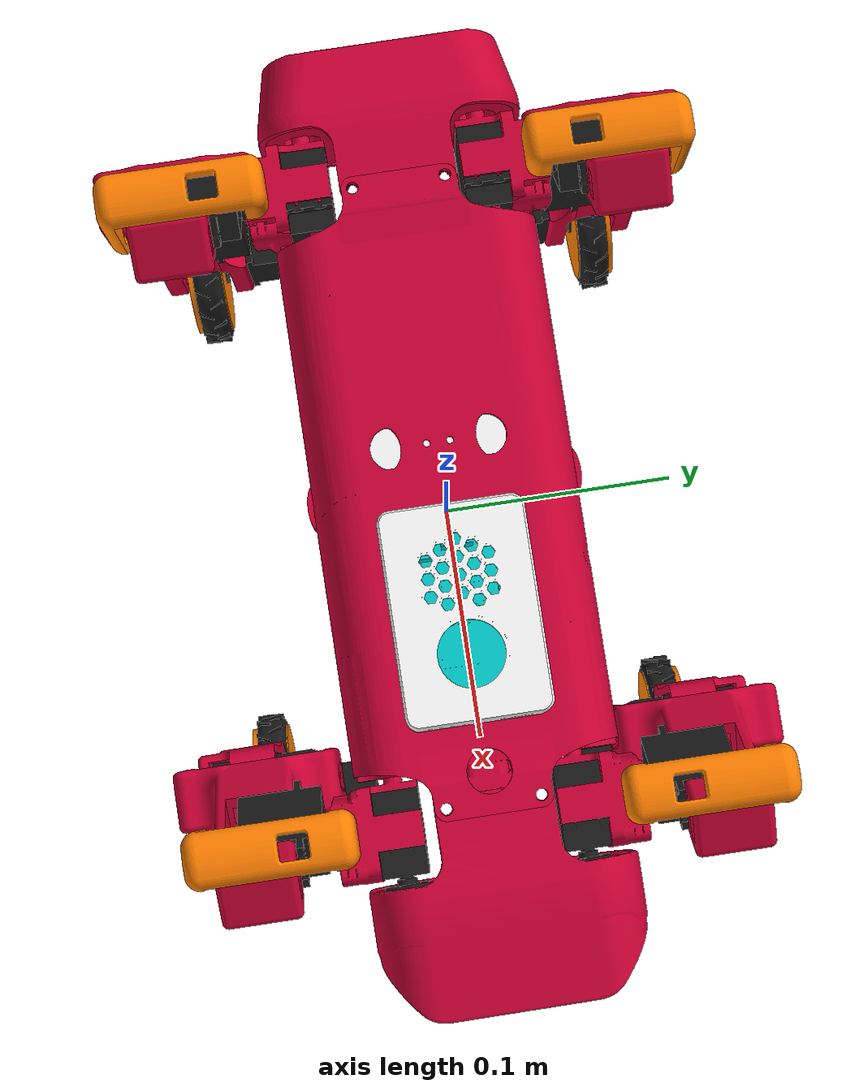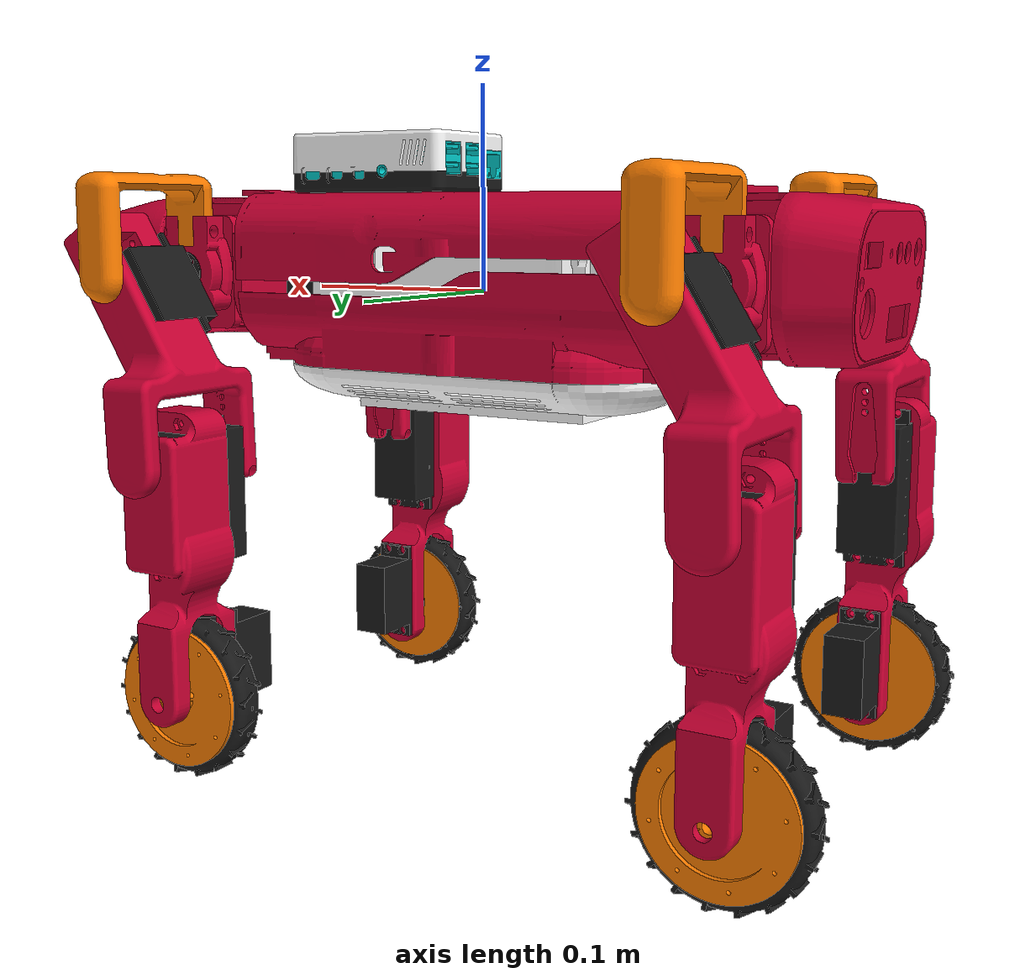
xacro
<?xml version="1.0"?>
<robot name="pupper" xmlns:xacro="http://www.ros.org/wiki/xacro">
  <xacro:property name="damping_value" value="0.01" />
  <xacro:property name="friction_value" value="1" />
  <xacro:property name="effort_limit" value="4" />
  <xacro:property name="velocity_limit" value="4" />
  <xacro:property name="wheel_damping_value" value="0.001" />
  <xacro:property name="wheel_friction_value" value="0.08" />
  <!-- Include Macros -->
  <xacro:include filename="$(find robot_description)/urdf/pupper/pupper_macro.xacro" />
  <xacro:include filename="$(find robot_description)/urdf/pupper/transmissions.xacro" />
  <xacro:include filename="$(find robot_description)/urdf/pupper/accessories.urdf.xacro" />

  <!-- Robot description -->
  <!-- STATIC Links -->
  <link name="base_link"/>

  <!-- MAIN BODY -->
  <xacro:mesh_link_body name="base_inertia"
              origin_rpy="0 0 0" origin_xyz="0 0 0"
              i_rpy="0 0 0" i_xyz="0 0 0"
              mass="0.001"
              c_xyz="0 0 0"
              length="0.224"
              width="0.11"
              height="0.0701"
              matname="white"
              meshfile="file://$(find robot_description)/meshes/pupper/main_body/body.stl"
              meshscale="1 1 1" /> <!-- m to mm -->

  <xacro:mesh_link_body name="bottom_cover"
              origin_rpy="0 0 0" origin_xyz="0 0 0"
              i_rpy="0 0 0" i_xyz="-0.008053 -0.000153 -0.025779"
              mass="0.05"
              c_xyz="0 0 0"
              length="0.277"
              width="0.114"
              height="0.0485"
              matname="red"
              meshfile="file://$(find robot_description)/meshes/pupper/main_body/bottom_cover.stl"
              meshscale="1 1 1" /> <!-- m to mm -->

  <xacro:mesh_link_body name="top_cover"
              origin_rpy="0 0 0" origin_xyz="0 0 0"
              i_rpy="0 0 0" i_xyz="-0.002497 0.000255 0.040206"
              mass="0.05"
              c_xyz="0 0 0"
              length="0.277"
              width="0.119"
              height="0.0446"
              matname="red"
              meshfile="file://$(find robot_description)/meshes/pupper/main_body/top_cover.stl"
              meshscale="1 1 1" /> <!-- m to mm -->

  <xacro:mesh_link_body name="BottomHatch"
              origin_rpy="0 0 0" origin_xyz="0 0 0"
              i_rpy="0 0 0" i_xyz="-0.003753 -0.000196 -0.048636"
              mass="0.25"
              c_xyz="0 0 0"
              length="0.213"
              width="0.107"
              height="0.0221"
              matname="white"
              meshfile="file://$(find robot_description)/meshes/pupper/main_body/BottomHatch.stl"
              meshscale="1 1 1" /> <!-- m to mm -->

  <!-- FrontShoulder -->
  <xacro:mesh_link_body name="front_shoulder_inner"
              origin_rpy="0 0 0" origin_xyz="0 0 0"
              i_rpy="0 0 0" i_xyz="0.124217 0.00107 0.017205"
              mass="0.03"
              c_xyz="0 0 0"
              length="0.0525"
              width="0.111"
              height="0.0695"
              matname="red"
              meshfile="file://$(find robot_description)/meshes/pupper/main_body/FrontShoulderInner.stl"
              meshscale="1 1 1" /> <!-- m to mm -->

  <xacro:mesh_link_body name="front_shoulder_outer"
              origin_rpy="0 0 0" origin_xyz="0 0 0"
              i_rpy="0 0 0" i_xyz="0.162468 -0.001186 0.009675"
              mass="0.02"
              c_xyz="0 0 0"
              length="0.006"
              width="0.11"
              height="0.066"
              matname="red"
              meshfile="file://$(find robot_description)/meshes/pupper/main_body/FrontShoulderOuter.stl"
              meshscale="1 1 1" /> <!-- m to mm -->

  <!-- BackShoulder -->
  <xacro:mesh_link_body name="back_shoulder_inner"
              origin_rpy="0 0 0" origin_xyz="0 0 0"
              i_rpy="0 0 0" i_xyz="-0.11978 0.000675 0.009675"
              mass="0.02"
              c_xyz="0 0 0"
              length="0.006"
              width="0.11"
              height="0.07"
              matname="red"
              meshfile="file://$(find robot_description)/meshes/pupper/main_body/BackShoulderInner.stl"
              meshscale="1 1 1" /> <!-- m to mm -->
  <!-- mass="0.03" -->
  <xacro:mesh_link_body name="back_shoulder_outer"
              origin_rpy="0 0 0" origin_xyz="0 0 0"
              i_rpy="0 0 0" i_xyz="-0.157649 0.000384 0.018141"
              mass="0.3"
              c_xyz="0 0 0"
              length="0.0525"
              width="0.11"
              height="0.07"
              matname="red"
              meshfile="file://$(find robot_description)/meshes/pupper/main_body/BackShoulderOuter.stl"
              meshscale="1 1 1" /> <!-- m to mm -->

  <!-- Head -->
  <xacro:mesh_link_body name="head"
              origin_rpy="0 0 0" origin_xyz="0 0 0"
              i_rpy="0 0 0" i_xyz="0.179619 -0.000148 0.013529"
              mass="0.02"
              c_xyz="0 0 0"
              length="0.093"
              width="0.116"
              height="0.0725"
              matname="red"
              meshfile="file://$(find robot_description)/meshes/pupper/main_body/head.stl"
              meshscale="1 1 1" /> <!-- m to mm -->

  <xacro:mesh_link_body name="head_camera"
              origin_rpy="0 0 0" origin_xyz="0 0 0"
              i_rpy="0 0 0" i_xyz="0.19128 0.000471 0.006541"
              mass="0.03"
              c_xyz="0 0 0"
              length="0.0383"
              width="0.042"
              height="0.0472"
              matname="black"
              meshfile="file://$(find robot_description)/meshes/pupper/main_body/head_camera.stl"
              meshscale="1 1 1" /> <!-- m to mm -->

  <!-- BACK -->
  <xacro:mesh_link_body name="RearPanel_Base"
              origin_rpy="0 0 0" origin_xyz="0 0 0"
              i_rpy="0 0 0" i_xyz="-0.200539 0.000216 0.010735"
              mass="0.02"
              c_xyz="0 0 0"
              length="0.0081"
              width="0.0996"
              height="0.061"
              matname="red"
              meshfile="file://$(find robot_description)/meshes/pupper/main_body/RearPanel_Base.stl"
              meshscale="1 1 1" /> <!-- m to mm -->

  <xacro:mesh_link_body name="RearPanel_Shell"
              origin_rpy="0 0 0" origin_xyz="0 0 0"
              i_rpy="0 0 0" i_xyz="-0.180045 -0.000455 0.013589"
              mass="0.05"
              c_xyz="0 0 0"
              length="0.0699"
              width="0.116"
              height="0.0725"
              matname="red"
              meshfile="file://$(find robot_description)/meshes/pupper/main_body/RearPanel_Shell.stl"
              meshscale="1 1 1" /> <!-- m to mm -->
  <!-- RASPI -->
  <xacro:mesh_link_body name="raspi_Top"
              origin_rpy="0 0 0" origin_xyz="0 0 0"
              i_rpy="0 0 0" i_xyz="0.053321 -0.000404 0.070793"
              mass="0.025"
              c_xyz="0 0 0"
              length="0.0906"
              width="0.0614"
              height="0.0234"
              matname="white"
              meshfile="file://$(find robot_description)/meshes/pupper/raspi/raspi_Top.stl"
              meshscale="1 1 1" /> <!-- m to mm -->

  <xacro:mesh_link_body name="raspi_Bottom"
              origin_rpy="0 0 0" origin_xyz="0 0 0"
              i_rpy="0 0 0" i_xyz="0.048989 -0.000236 0.050542"
              mass="0.016"
              c_xyz="0 0 0"
              length="0.0906"
              width="0.614"
              height="0.0097"
              matname="black"
              meshfile="file://$(find robot_description)/meshes/pupper/raspi/raspi_Bottom.stl"
              meshscale="1 1 1" /> <!-- m to mm -->

  <xacro:mesh_link_body name="RASPBERRY_PI_4B"
              origin_rpy="0 0 0" origin_xyz="0 0 0"
              i_rpy="0 0 0" i_xyz="0.036607 0.001066 0.058964"
              mass="0.047"
              c_xyz="0 0 0"
              length="0.0897"
              width="0.0584"
              height="0.0188"
              matname="green"
              meshfile="file://$(find robot_description)/meshes/pupper/raspi/RASPBERRY_PI_4B.stl"
              meshscale="1 1 1" /> <!-- m to mm -->

  <!-- DYNAMIC LINKS (Joints Included) -->
  <!-- FRONT LEFT LEG -->
  <!-- Coax -->
  <xacro:mesh_link name="front_left_Coax_servo"
              origin_rpy="0 0 0" origin_xyz="-0.15493 -0.03768 -0.019101"
              i_rpy="0 0 0" i_xyz="-0.018837 0 -0.010419"
              mass="0.06"
              c_xyz="-0.018837 0 -0.010419"
              length="0.042"
              width="0.02"
              height="0.0545"
              matname="black"
              meshfile="file://$(find robot_description)/meshes/pupper/leg/front_left/front_left_Coax_Servo.stl"
              meshscale="1 1 1" /> <!-- m to mm -->

  <xacro:rev_joint name="motor_front_left_coax" type="revolute"
                    axis_xyz="1 0 0"
                    origin_rpy="0 0 0" origin_xyz="0.15493 0.03768 0.019101"
                    parent="front_shoulder_outer" child="front_left_Coax_servo"
                    effort="${effort_limit}" velocity="${velocity_limit}"
                    damping="${damping_value}"
                    friction="${friction_value}"
                    lower="-1.04"
                    upper="1.04"/>

  <xacro:mesh_link name="front_left_Coax_rudder"
              origin_rpy="0 0 0" origin_xyz="-0.15493 -0.03768 -0.019101"
              i_rpy="0 0 0" i_xyz="0.003856 0 0"
              mass="0.005"
              c_xyz="0.002883 0 0"
              length="0.0045"
              width="0.02"
              height="0.02"
              matname="black"
              meshfile="file://$(find robot_description)/meshes/pupper/leg/front_left/front_left_Coax_rudder.stl"
              meshscale="1 1 1" /> <!-- m to mm -->

  <xacro:frame_joint name="f_l_Coax_servo_rudder" type="fixed"
                  origin_rpy="0 0 0" origin_xyz="0 0 0"
                  parent="front_left_Coax_servo" child="front_left_Coax_rudder"/>

  <xacro:mesh_link name="front_left_Coax"
              origin_rpy="0 0 0" origin_xyz="-0.15493 -0.03768 -0.019101"
              i_rpy="0 0 0" i_xyz="-0.021825 0.013198 -0.008933"
              mass="0.04"
              c_xyz="-0.021825 0.008596 -0.008933"
              length="0.0461"
              width="0.0375"
              height="0.0575"
              matname="red"
              meshfile="file://$(find robot_description)/meshes/pupper/leg/front_left/front_left_Coax.stl"
              meshscale="1 1 1" /> <!-- m to mm -->

  <xacro:frame_joint name="f_l_Coax_servo_Coax" type="fixed"
                  origin_rpy="0 0 0" origin_xyz="0 0 0"
                  parent="front_left_Coax_servo" child="front_left_Coax"/>

  <xacro:mesh_link name="front_left_shlouder"
              origin_rpy="0 0 0" origin_xyz="-0.15493 -0.03768 -0.019101"
              i_rpy="0 0 0" i_xyz="-0.020287 0.058053 0.022614"
              mass="0.02"
              c_xyz="-0.020287 0.05327 0.007516"
              length="0.025"
              width="0.073"
              height="0.0609"
              matname="orange"
              meshfile="file://$(find robot_description)/meshes/pupper/leg/front_left/front_left_Shlouder.stl"
              meshscale="1 1 1" /> <!-- m to mm -->

  <xacro:frame_joint name="f_l_Coax_Shlouder" type="fixed"
                  origin_rpy="0 0 0" origin_xyz="0 0 0"
                  parent="front_left_Coax" child="front_left_shlouder"/>

  <!-- UPPER LEG -->
  <xacro:mesh_link name="front_left_thigh_Servo"
              origin_rpy="0 0 0" origin_xyz="-0.135449 -0.07015 -0.00883"
              i_rpy="0 0 0" i_xyz="-0.0055 0.018242 -0.008867"
              mass="0.06"
              c_xyz="-0.0055 0.018242 -0.008867"
              length="0.0458"
              width="0.042"
              height="0.0568"
              matname="black"
              meshfile="file://$(find robot_description)/meshes/pupper/leg/front_left/front_left_thigh_Servo.stl"
              meshscale="1 1 1" /> <!-- m to mm -->

  <xacro:rev_joint name="motor_front_left_thigh" type="revolute"
                    axis_xyz="0 1 0"
                    origin_rpy="0 0 0" origin_xyz="-0.019498 0.032469 -0.010262"
                    parent="front_left_Coax" child="front_left_thigh_Servo"
                    effort="${effort_limit}" velocity="${velocity_limit}"
                    damping="${damping_value}"
                    friction="${friction_value}"
                    lower="${-pi/2}"
                    upper="2.59"/>

  <xacro:mesh_link name="front_left_thigh_rudder"
              origin_rpy="0 0 0" origin_xyz="-0.135449 -0.07015 -0.00883"
              i_rpy="0 0 0" i_xyz="0 -0.004899 0"
              mass="0.005"
              c_xyz="0 -0.003926 0"
              length="0.02"
              width="0.0045"
              height="0.02"
              matname="black"
              meshfile="file://$(find robot_description)/meshes/pupper/leg/front_left/front_left_thigh_rudder.stl"
              meshscale="1 1 1" /> <!-- m to mm -->

  <xacro:frame_joint name="f_l_thigh_servo_rudder" type="fixed"
                  origin_rpy="0 0 0" origin_xyz="0 0 0"
                  parent="front_left_thigh_Servo" child="front_left_thigh_rudder"/>

  <xacro:mesh_link name="front_left_thigh"
              origin_rpy="0 0 0" origin_xyz="-0.135449 -0.07015 -0.00883"
              i_rpy="0 0 0" i_xyz="-0.01291 0.032152 -0.034725"
              mass="0.06"
              c_xyz="-0.005919 0.030194 -0.035809"
              length="0.0718"
              width="0.075"
              height="0.131"
              matname="red"
              meshfile="file://$(find robot_description)/meshes/pupper/leg/front_left/front_left_thigh.stl"
              meshscale="1 1 1" /> <!-- m to mm -->

  <xacro:frame_joint name="f_l_thigh_servo_thigh" type="fixed"
                  origin_rpy="0 0 0" origin_xyz="0 0 0"
                  parent="front_left_thigh_Servo" child="front_left_thigh"/>

  <!-- LOWER LEG -->
  <xacro:mesh_link name="front_left_leg_rudder"
              origin_rpy="0 0 0" origin_xyz="-0.135449 -0.07015 -0.00883"
              i_rpy="0 0 0" i_xyz="-0.028336 -0.003934 -0.075276"
              mass="0.01"
              c_xyz="0 0 -0.06"
              length="0.0145"
              width="0.007"
              height="0.0441"
              matname="red"
              meshfile="file://$(find robot_description)/meshes/pupper/leg/front_left/front_left_leg_rudder.stl"
              meshscale="1 1 1" /> <!-- m to mm -->

  <xacro:frame_joint name="f_l_leg_servo_rudder" type="fixed"
                  origin_rpy="0 0 0" origin_xyz="0 0 0"
                  parent="front_left_thigh" child="front_left_leg_rudder"/>

  <xacro:mesh_link name="front_left_leg_Servo"
              origin_rpy="0 0 0" origin_xyz="-0.108069 -0.073783 0.076816"
              i_rpy="0 0 0" i_xyz="0 0.02386 -0.020465"
              mass="0.16"
              c_xyz="0 0 -0.06"
              length="0.03"
              width="0.053"
              height="0.079"
              matname="black"
              meshfile="file://$(find robot_description)/meshes/pupper/leg/front_left/front_left_leg_60Servo.stl"
              meshscale="1 1 1" /> <!-- m to mm -->

  <xacro:rev_joint name="motor_front_left_leg" type="revolute"
                    axis_xyz="0 1 0"
                    origin_rpy="0 0 0" origin_xyz="-0.027369 0.003637 -0.08568"
                    parent="front_left_thigh" child="front_left_leg_Servo"
                    effort="${effort_limit}" velocity="${velocity_limit}"
                    damping="${damping_value}"
                    friction="${friction_value}"
                    lower="-2.9"
                    upper="${pi/2}"/>

  <xacro:mesh_link name="front_left_leg"
              origin_rpy="0 0 0" origin_xyz="-0.108069 -0.073783 0.076816"
              i_rpy="0 0 0" i_xyz="-0.002639 0.034269 -0.053288"
              mass="0.066"
              c_xyz="0 0 -0.06"
              length="0.0368"
              width="0.0547"
              height="0.165"
              matname="red"
              meshfile="file://$(find robot_description)/meshes/pupper/leg/front_left/front_left_leg.stl"
              meshscale="1 1 1" /> <!-- m to mm -->

  <xacro:frame_joint name="f_l_leg_servo_leg" type="fixed"
                  origin_rpy="0 0 0" origin_xyz="0 0 0"
                  parent="front_left_leg_Servo" child="front_left_leg"/>

  <!-- Wheel -->
  <xacro:mesh_link name="front_left_wheel_Servo"
              origin_rpy="0 0 0" origin_xyz="-0.108069 -0.073783 0.076816"
              i_rpy="0 0 0" i_xyz="0.001909 -0.005166 -0.108741"
              mass="0.05"
              c_xyz="${-0.247} ${-0.068} ${0.18}"
              length="0.02"
              width="0.042"
              height="0.0545"
              matname="black"
              meshfile="file://$(find robot_description)/meshes/pupper/leg/front_left/front_left_wheel_Servo.stl"
              meshscale="1 1 1" /> <!-- m to mm -->

  <xacro:frame_joint name="f_l_wheel_leg_servo" type="fixed"
                  origin_rpy="0 0 0" origin_xyz="0 0 0"
                  parent="front_left_leg" child="front_left_wheel_Servo"/>

  <xacro:mesh_link name="front_left_wheel_rudder"
              origin_rpy="0 0 0" origin_xyz="-0.108069 -0.073783 0.076816"
              i_rpy="0 0 0" i_xyz="0.001893 0.017314 -0.119183"
              mass="0.005"
              c_xyz="${-0.247} ${-0.068} ${0.18}"
              length="0.02"
              width="0.0045"
              height="0.02"
              matname="black"
              meshfile="file://$(find robot_description)/meshes/pupper/leg/front_left/front_left_wheel_rudder.stl"
              meshscale="1 1 1" /> <!-- m to mm -->

  <xacro:frame_joint name="f_l_wheel_servo_rudder" type="fixed"
                  origin_rpy="0 0 0" origin_xyz="0 0 0"
                  parent="front_left_wheel_Servo" child="front_left_wheel_rudder"/>

  <xacro:mesh_link name="front_left_wheel"
              origin_rpy="0 0 0" origin_xyz="-0.109989 -0.086213 0.196043"
              i_rpy="0 0 0" i_xyz="0 0.012482 0"
              mass="0.05"
              c_xyz="${-0.247} ${-0.068} ${0.18}"
              length="0.069"
              width="0.0253"
              height="0.069"
              matname="orange"
              meshfile="file://$(find robot_description)/meshes/pupper/leg/front_left/front_left_wheel_frame.stl"
              meshscale="1 1 1" /> <!-- m to mm -->

  <xacro:con_joint name="motor_front_left_wheel" type="continuous"
                    axis_xyz="0 1 0"
                    origin_rpy="0 0 0" origin_xyz="0.001899 0.01308 -0.11921"
                    parent="front_left_wheel_rudder" child="front_left_wheel"
                    effort="3.0" velocity="4.0"
                    damping="${wheel_damping_value}"
                    friction="${wheel_friction_value}"/>

  <xacro:mesh_link_sphere name="front_left_tire"
              origin_rpy="0 0 0" origin_xyz="-0.109989 -0.086213 0.196043"
              i_rpy="0 0 0" i_xyz="0 0.012311 0"
              mass="0.005"
              c_xyz="${-0.247} ${-0.068} ${0.18}"
              length="0.0822"
              width="0.015"
              height="0.0822"
              radius="0.04"
              matname="black"
              meshfile="file://$(find robot_description)/meshes/pupper/leg/front_left/front_left_tire_v1_1.stl"
              i_meshfile="file://$(find robot_description)/meshes/pupper/leg/front_left/front_left_tire_v6.stl"
              meshscale="1 1 1" /> <!-- m to mm -->

  <xacro:frame_joint name="f_l_wheel_frame_tire" type="fixed"
                  origin_rpy="0 0 0" origin_xyz="0 0 0"
                  parent="front_left_wheel" child="front_left_tire"/>

  <!-- BACK LEFT LEG -->
  <!-- Coax -->
  <xacro:mesh_link name="back_left_Coax_servo"
              origin_rpy="0 0 0" origin_xyz="0.126857 -0.03768 -0.019101"
              i_rpy="0 0 0" i_xyz="-0.018837 0 -0.010419"
              mass="0.06"
              c_xyz="-0.018837 0 -0.010419"
              length="0.042"
              width="0.02"
              height="0.0545"
              matname="black"
              meshfile="file://$(find robot_description)/meshes/pupper/leg/back_left/back_left_Coax_Servo.stl"
              meshscale="1 1 1" /> <!-- m to mm -->

  <xacro:rev_joint name="motor_back_left_coax" type="revolute"
                    axis_xyz="1 0 0"
                    origin_rpy="0 0 0" origin_xyz="-0.126857 0.03768 0.019101"
                    parent="back_shoulder_inner" child="back_left_Coax_servo"
                    effort="${effort_limit}" velocity="${velocity_limit}"
                    damping="${damping_value}"
                    friction="${friction_value}"
                    lower="-1.04"
                    upper="1.04"/>

  <xacro:mesh_link name="back_left_Coax_rudder"
              origin_rpy="0 0 0" origin_xyz="0.126857 -0.03768 -0.019101"
              i_rpy="0 0 0" i_xyz="0.003856 0 0"
              mass="0.005"
              c_xyz="0.002883 0 0"
              length="0.0045"
              width="0.02"
              height="0.02"
              matname="black"
              meshfile="file://$(find robot_description)/meshes/pupper/leg/back_left/back_left_Coax_rudder.stl"
              meshscale="1 1 1" /> <!-- m to mm -->

  <xacro:frame_joint name="b_l_Coax_servo_rudder" type="fixed"
                  origin_rpy="0 0 0" origin_xyz="0 0 0"
                  parent="back_left_Coax_servo" child="back_left_Coax_rudder"/>

  <xacro:mesh_link name="back_left_Coax"
              origin_rpy="0 0 0" origin_xyz="0.126857 -0.03768 -0.019101"
              i_rpy="0 0 0" i_xyz="-0.021825 0.013198 -0.008933"
              mass="0.04"
              c_xyz="-0.021825 0.008596 -0.008933"
              length="0.0461"
              width="0.0375"
              height="0.0575"
              matname="red"
              meshfile="file://$(find robot_description)/meshes/pupper/leg/back_left/back_left_Coax.stl"
              meshscale="1 1 1" /> <!-- m to mm -->

  <xacro:frame_joint name="b_l_Coax_servo_Coax" type="fixed"
                  origin_rpy="0 0 0" origin_xyz="0 0 0"
                  parent="back_left_Coax_servo" child="back_left_Coax"/>

  <xacro:mesh_link name="back_left_shlouder"
              origin_rpy="0 0 0" origin_xyz="0.126857 -0.03768 -0.019101"
              i_rpy="0 0 0" i_xyz="-0.020287 0.058053 0.022614"
              mass="0.02"
              c_xyz="-0.020287 0.05327 0.007516"
              length="0.025"
              width="0.073"
              height="0.0609"
              matname="orange"
              meshfile="file://$(find robot_description)/meshes/pupper/leg/back_left/back_left_Shlouder.stl"
              meshscale="1 1 1" /> <!-- m to mm -->

  <xacro:frame_joint name="b_l_Coax_Shlouder" type="fixed"
                  origin_rpy="0 0 0" origin_xyz="0 0 0"
                  parent="back_left_Coax" child="back_left_shlouder"/>

  <!-- UPPER LEG -->
  <xacro:mesh_link name="back_left_thigh_Servo"
              origin_rpy="0 0 0" origin_xyz="0.146183 -0.07015 -0.00883"
              i_rpy="0 0 0" i_xyz="-0.0055 0.018242 -0.008867"
              mass="0.06"
              c_xyz="-0.0055 0.018242 -0.008867"
              length="0.0458"
              width="0.042"
              height="0.0568"
              matname="black"
              meshfile="file://$(find robot_description)/meshes/pupper/leg/back_left/back_left_thigh_Servo.stl"
              meshscale="1 1 1" /> <!-- m to mm -->

  <xacro:rev_joint name="motor_back_left_thigh" type="revolute"
                    axis_xyz="0 1 0"
                    origin_rpy="0 0 0" origin_xyz="-0.019498 0.032469 -0.010262"
                    parent="back_left_Coax" child="back_left_thigh_Servo"
                    effort="${effort_limit}" velocity="${velocity_limit}"
                    damping="${damping_value}"
                    friction="${friction_value}"
                    lower="${-pi/2}"
                    upper="2.59"/>

  <xacro:mesh_link name="back_left_thigh_rudder"
              origin_rpy="0 0 0" origin_xyz="0.146183 -0.07015 -0.00883"
              i_rpy="0 0 0" i_xyz="0 -0.004899 0"
              mass="0.005"
              c_xyz="0 -0.003926 0"
              length="0.02"
              width="0.0045"
              height="0.02"
              matname="black"
              meshfile="file://$(find robot_description)/meshes/pupper/leg/back_left/back_left_thigh_rudder.stl"
              meshscale="1 1 1" /> <!-- m to mm -->

  <xacro:frame_joint name="b_l_thigh_servo_rudder" type="fixed"
                  origin_rpy="0 0 0" origin_xyz="0 0 0"
                  parent="back_left_thigh_Servo" child="back_left_thigh_rudder"/>

  <xacro:mesh_link name="back_left_thigh"
              origin_rpy="0 0 0" origin_xyz="0.146183 -0.07015 -0.00883"
              i_rpy="0 0 0" i_xyz="-0.01291 0.032152 -0.034725"
              mass="0.06"
              c_xyz="-0.005919 0.030194 -0.035809"
              length="0.0718"
              width="0.075"
              height="0.131"
              matname="red"
              meshfile="file://$(find robot_description)/meshes/pupper/leg/back_left/back_left_thigh.stl"
              meshscale="1 1 1" /> <!-- m to mm -->

  <xacro:frame_joint name="b_l_thigh_servo_thigh" type="fixed"
                  origin_rpy="0 0 0" origin_xyz="0 0 0"
                  parent="back_left_thigh_Servo" child="back_left_thigh"/>

  <!-- LOWER LEG -->
  <xacro:mesh_link name="back_left_leg_rudder"
              origin_rpy="0 0 0" origin_xyz="0.146183 -0.07015 -0.00883"
              i_rpy="0 0 0" i_xyz="-0.028336 -0.003934 -0.075276"
              mass="0.01"
              c_xyz="0 0 -0.06"
              length="0.0145"
              width="0.007"
              height="0.0441"
              matname="red"
              meshfile="file://$(find robot_description)/meshes/pupper/leg/back_left/back_left_leg_rudder.stl"
              meshscale="1 1 1" /> <!-- m to mm -->

  <xacro:frame_joint name="b_l_leg_servo_rudder" type="fixed"
                  origin_rpy="0 0 0" origin_xyz="0 0 0"
                  parent="back_left_thigh" child="back_left_leg_rudder"/>

  <xacro:mesh_link name="back_left_leg_Servo"
              origin_rpy="0 0 0" origin_xyz="0.173076 -0.073783 0.076816"
              i_rpy="0 0 0" i_xyz="0 0.02386 -0.020465"
              mass="0.16"
              c_xyz="0 0 -0.06"
              length="0.03"
              width="0.053"
              height="0.079"
              matname="black"
              meshfile="file://$(find robot_description)/meshes/pupper/leg/back_left/back_left_leg_60Servo.stl"
              meshscale="1 1 1" /> <!-- m to mm -->

  <xacro:rev_joint name="motor_back_left_leg" type="revolute"
                    axis_xyz="0 1 0"
                    origin_rpy="0 0 0" origin_xyz="-0.027369 0.003637 -0.08568"
                    parent="back_left_thigh" child="back_left_leg_Servo"
                    effort="${effort_limit}" velocity="${velocity_limit}"
                    damping="${damping_value}"
                    friction="${friction_value}"
                    lower="-2.9"
                    upper="${pi/2}"/>

  <xacro:mesh_link name="back_left_leg"
              origin_rpy="0 0 0" origin_xyz="0.173076 -0.073783 0.076816"
              i_rpy="0 0 0" i_xyz="-0.002639 0.034269 -0.053288"
              mass="0.066"
              c_xyz="0 0 -0.06"
              length="0.0368"
              width="0.0547"
              height="0.165"
              matname="red"
              meshfile="file://$(find robot_description)/meshes/pupper/leg/back_left/back_left_leg.stl"
              meshscale="1 1 1" /> <!-- m to mm -->

  <xacro:frame_joint name="b_l_leg_servo_leg" type="fixed"
                  origin_rpy="0 0 0" origin_xyz="0 0 0"
                  parent="back_left_leg_Servo" child="back_left_leg"/>

  <!-- Wheel -->
  <xacro:mesh_link name="back_left_wheel_Servo"
              origin_rpy="0 0 0" origin_xyz="0.173076 -0.073783 0.076816"
              i_rpy="0 0 0" i_xyz="0.001909 -0.005166 -0.108741"
              mass="0.05"
              c_xyz="${-0.247} ${-0.068} ${0.18}"
              length="0.02"
              width="0.042"
              height="0.0545"
              matname="black"
              meshfile="file://$(find robot_description)/meshes/pupper/leg/back_left/back_left_wheel_Servo.stl"
              meshscale="1 1 1" /> <!-- m to mm -->

  <xacro:frame_joint name="b_l_wheel_leg_servo" type="fixed"
                  origin_rpy="0 0 0" origin_xyz="0 0 0"
                  parent="back_left_leg" child="back_left_wheel_Servo"/>

  <xacro:mesh_link name="back_left_wheel_rudder"
              origin_rpy="0 0 0" origin_xyz="0.173076 -0.073783 0.076816"
              i_rpy="0 0 0" i_xyz="0.001893 0.017314 -0.119183"
              mass="0.005"
              c_xyz="${-0.247} ${-0.068} ${0.18}"
              length="0.02"
              width="0.0045"
              height="0.02"
              matname="black"
              meshfile="file://$(find robot_description)/meshes/pupper/leg/back_left/back_left_wheel_rudder.stl"
              meshscale="1 1 1" /> <!-- m to mm -->

  <xacro:frame_joint name="b_l_wheel_servo_rudder" type="fixed"
                  origin_rpy="0 0 0" origin_xyz="0 0 0"
                  parent="back_left_wheel_Servo" child="back_left_wheel_rudder"/>

  <xacro:mesh_link name="back_left_wheel"
              origin_rpy="0 0 0" origin_xyz="0.171162 -0.086213 0.196043"
              i_rpy="0 0 0" i_xyz="0 0.012482 0"
              mass="0.05"
              c_xyz="${-0.247} ${-0.068} ${0.18}"
              length="0.069"
              width="0.0253"
              height="0.069"
              matname="orange"
              meshfile="file://$(find robot_description)/meshes/pupper/leg/back_left/back_left_wheel_frame.stl"
              meshscale="1 1 1" /> <!-- m to mm -->

  <xacro:con_joint name="motor_back_left_wheel" type="continuous"
                    axis_xyz="0 1 0"
                    origin_rpy="0 0 0" origin_xyz="0.001899 0.01308 -0.11921"
                    parent="back_left_wheel_rudder" child="back_left_wheel"
                    effort="3.0" velocity="4.0"
                    damping="${wheel_damping_value}"
                    friction="${wheel_friction_value}"/>

  <xacro:mesh_link_sphere name="back_left_tire"
              origin_rpy="0 0 0" origin_xyz="0.171162 -0.086213 0.196043"
              i_rpy="0 0 0" i_xyz="0 0.012311 0"
              mass="0.005"
              c_xyz="${-0.247} ${-0.068} ${0.18}"
              length="0.0822"
              width="0.015"
              height="0.0822"
              radius="0.04"
              matname="black"
              meshfile="file://$(find robot_description)/meshes/pupper/leg/back_left/back_left_tire_v1_1.stl"
              i_meshfile="file://$(find robot_description)/meshes/pupper/leg/back_left/back_left_tire_v6.stl"
              meshscale="1 1 1" /> <!-- m to mm -->

  <xacro:frame_joint name="b_l_wheel_frame_tire" type="fixed"
                  origin_rpy="0 0 0" origin_xyz="0 0 0"
                  parent="back_left_wheel" child="back_left_tire"/>

  <!-- FRONT RIGHT LEG -->
  <!-- Coax -->
  <xacro:mesh_link name="front_right_Coax_servo"
              origin_rpy="0 0 0" origin_xyz="-0.15493 0.03768 -0.019101"
              i_rpy="0 0 0" i_xyz="-0.018837 0 -0.010419"
              mass="0.06"
              c_xyz="-0.018837 0 -0.010419"
              length="0.042"
              width="0.02"
              height="0.0545"
              matname="black"
              meshfile="file://$(find robot_description)/meshes/pupper/leg/front_right/front_right_Coax_Servo.stl"
              meshscale="1 1 1" /> <!-- m to mm -->

  <xacro:rev_joint name="motor_front_right_coax" type="revolute"
                    axis_xyz="1 0 0"
                    origin_rpy="0 0 0" origin_xyz="0.15493 -0.03768 0.019101"
                    parent="front_shoulder_outer" child="front_right_Coax_servo"
                    effort="${effort_limit}" velocity="${velocity_limit}"
                    damping="${damping_value}"
                    friction="${friction_value}"
                    lower="-1.04"
                    upper="1.04"/>

  <xacro:mesh_link name="front_right_Coax_rudder"
              origin_rpy="0 0 0" origin_xyz="-0.15493 0.03768 -0.019101"
              i_rpy="0 0 0" i_xyz="0.003856 0 0"
              mass="0.005"
              c_xyz="0.003856 0 0"
              length="0.0045"
              width="0.02"
              height="0.02"
              matname="black"
              meshfile="file://$(find robot_description)/meshes/pupper/leg/front_right/front_right_Coax_rudder.stl"
              meshscale="1 1 1" /> <!-- m to mm -->

  <xacro:frame_joint name="f_r_Coax_servo_rudder" type="fixed"
                  origin_rpy="0 0 0" origin_xyz="0 0 0"
                  parent="front_right_Coax_servo" child="front_right_Coax_rudder"/>

  <xacro:mesh_link name="front_right_Coax"
              origin_rpy="0 0 0" origin_xyz="-0.15493 0.03768 -0.019101"
              i_rpy="0 0 0" i_xyz="-0.021825 -0.013198 -0.008933"
              mass="0.04"
              c_xyz="-0.021825 -0.008596 -0.008933"
              length="0.0461"
              width="0.0375"
              height="0.0575"
              matname="red"
              meshfile="file://$(find robot_description)/meshes/pupper/leg/front_right/front_right_Coax.stl"
              meshscale="1 1 1" /> <!-- m to mm -->

  <xacro:frame_joint name="f_r_Coax_servo_Coax" type="fixed"
                  origin_rpy="0 0 0" origin_xyz="0 0 0"
                  parent="front_right_Coax_servo" child="front_right_Coax"/>

  <xacro:mesh_link name="front_right_shlouder"
              origin_rpy="0 0 0" origin_xyz="-0.15493 0.03768 -0.019101"
              i_rpy="0 0 0" i_xyz="-0.020287 -0.058053 0.022614"
              mass="0.02"
              c_xyz="-0.020287 -0.05327 0.007516"
              length="0.025"
              width="0.073"
              height="0.0609"
              matname="orange"
              meshfile="file://$(find robot_description)/meshes/pupper/leg/front_right/front_right_Shlouder.stl"
              meshscale="1 1 1" /> <!-- m to mm -->

  <xacro:frame_joint name="f_r_Coax_Shlouder" type="fixed"
                  origin_rpy="0 0 0" origin_xyz="0 0 0"
                  parent="front_right_Coax" child="front_right_shlouder"/>

  <!-- UPPER LEG -->
  <xacro:mesh_link name="front_right_thigh_Servo"
              origin_rpy="0 0 0" origin_xyz="-0.135449 0.07015 -0.00883"
              i_rpy="0 0 0" i_xyz="-0.0055 -0.018242 -0.008867"
              mass="0.06"
              c_xyz="-0.0055 -0.018242 -0.008867"
              length="0.0458"
              width="0.042"
              height="0.0568"
              matname="black"
              meshfile="file://$(find robot_description)/meshes/pupper/leg/front_right/front_right_thigh_Servo.stl"
              meshscale="1 1 1" /> <!-- m to mm -->

  <xacro:rev_joint name="motor_front_right_thigh" type="revolute"
                    axis_xyz="0 1 0"
                    origin_rpy="0 0 0" origin_xyz="-0.019498 -0.032469 -0.010262"
                    parent="front_right_Coax" child="front_right_thigh_Servo"
                    effort="${effort_limit}" velocity="${velocity_limit}"
                    damping="${damping_value}"
                    friction="${friction_value}"
                    lower="${-pi/2}"
                    upper="2.59"/>

  <xacro:mesh_link name="front_right_thigh_rudder"
              origin_rpy="0 0 0" origin_xyz="-0.135449 0.07015 -0.00883"
              i_rpy="0 0 0" i_xyz="0 0.004899 0"
              mass="0.005"
              c_xyz="0 0.003926 0"
              length="0.02"
              width="0.0045"
              height="0.02"
              matname="black"
              meshfile="file://$(find robot_description)/meshes/pupper/leg/front_right/front_right_thigh_rudder.stl"
              meshscale="1 1 1" /> <!-- m to mm -->

  <xacro:frame_joint name="f_r_thigh_servo_rudder" type="fixed"
                  origin_rpy="0 0 0" origin_xyz="0 0 0"
                  parent="front_right_thigh_Servo" child="front_right_thigh_rudder"/>

  <xacro:mesh_link name="front_right_thigh"
              origin_rpy="0 0 0" origin_xyz="-0.135449 0.07015 -0.00883"
              i_rpy="0 0 0" i_xyz="-0.01291 -0.032152 -0.034725"
              mass="0.06"
              c_xyz="-0.005919 -0.030194 -0.035809"
              length="0.0718"
              width="0.075"
              height="0.131"
              matname="red"
              meshfile="file://$(find robot_description)/meshes/pupper/leg/front_right/front_right_thigh.stl"
              meshscale="1 1 1" /> <!-- m to mm -->

  <xacro:frame_joint name="f_r_thigh_servo_thigh" type="fixed"
                  origin_rpy="0 0 0" origin_xyz="0 0 0"
                  parent="front_right_thigh_Servo" child="front_right_thigh"/>

  <!-- LOWER LEG -->
  <xacro:mesh_link name="front_right_leg_rudder"
              origin_rpy="0 0 0" origin_xyz="-0.135449 0.07015 -0.00883"
              i_rpy="0 0 0" i_xyz="-0.028336 0.003934 -0.075276"
              mass="0.01"
              c_xyz="0 0 -0.06"
              length="0.0145"
              width="0.007"
              height="0.0441"
              matname="red"
              meshfile="file://$(find robot_description)/meshes/pupper/leg/front_right/front_right_leg_rudder.stl"
              meshscale="1 1 1" /> <!-- m to mm -->

  <xacro:frame_joint name="f_r_leg_servo_rudder" type="fixed"
                  origin_rpy="0 0 0" origin_xyz="0 0 0"
                  parent="front_right_thigh" child="front_right_leg_rudder"/>

  <xacro:mesh_link name="front_right_leg_Servo"
              origin_rpy="0 0 0" origin_xyz="-0.108069 0.073783 0.076816"
              i_rpy="0 0 0" i_xyz="0 -0.02386 -0.020465"
              mass="0.16"
              c_xyz="0 0 -0.06"
              length="0.03"
              width="0.053"
              height="0.079"
              matname="black"
              meshfile="file://$(find robot_description)/meshes/pupper/leg/front_right/front_right_leg_60Servo.stl"
              meshscale="1 1 1" /> <!-- m to mm -->

  <xacro:rev_joint name="motor_front_right_leg" type="revolute"
                    axis_xyz="0 1 0"
                    origin_rpy="0 0 0" origin_xyz="-0.027369 -0.003637 -0.08568"
                    parent="front_right_thigh" child="front_right_leg_Servo"
                    effort="${effort_limit}" velocity="${velocity_limit}"
                    damping="${damping_value}"
                    friction="${friction_value}"
                    lower="-2.9"
                    upper="${pi/2}"/>

  <xacro:mesh_link name="front_right_leg"
              origin_rpy="0 0 0" origin_xyz="-0.108069 0.073783 0.076816"
              i_rpy="0 0 0" i_xyz="-0.002639 -0.034269 -0.053288"
              mass="0.066"
              c_xyz="0 0 -0.06"
              length="0.0368"
              width="0.0547"
              height="0.165"
              matname="red"
              meshfile="file://$(find robot_description)/meshes/pupper/leg/front_right/front_right_leg.stl"
              meshscale="1 1 1" /> <!-- m to mm -->

  <xacro:frame_joint name="f_r_leg_servo_leg" type="fixed"
                  origin_rpy="0 0 0" origin_xyz="0 0 0"
                  parent="front_right_leg_Servo" child="front_right_leg"/>

  <!-- Wheel -->
  <xacro:mesh_link name="front_right_wheel_Servo"
              origin_rpy="0 0 0" origin_xyz="-0.108069 0.073783 0.076816"
              i_rpy="0 0 0" i_xyz="0.001909 0.005166 -0.108741"
              mass="0.05"
              c_xyz="${-0.247} ${-0.068} ${0.18}"
              length="0.02"
              width="0.042"
              height="0.0545"
              matname="black"
              meshfile="file://$(find robot_description)/meshes/pupper/leg/front_right/front_right_wheel_Servo.stl"
              meshscale="1 1 1" /> <!-- m to mm -->

  <xacro:frame_joint name="f_r_wheel_leg_servo" type="fixed"
                  origin_rpy="0 0 0" origin_xyz="0 0 0"
                  parent="front_right_leg" child="front_right_wheel_Servo"/>

  <xacro:mesh_link name="front_right_wheel_rudder"
              origin_rpy="0 0 0" origin_xyz="-0.108069 0.073783 0.076816"
              i_rpy="0 0 0" i_xyz="0.001893 -0.017314 -0.119183"
              mass="0.005"
              c_xyz="${-0.247} ${-0.068} ${0.18}"
              length="0.02"
              width="0.0045"
              height="0.02"
              matname="black"
              meshfile="file://$(find robot_description)/meshes/pupper/leg/front_right/front_right_wheel_rudder.stl"
              meshscale="1 1 1" /> <!-- m to mm -->

  <xacro:frame_joint name="f_r_wheel_servo_rudder" type="fixed"
                  origin_rpy="0 0 0" origin_xyz="0 0 0"
                  parent="front_right_wheel_Servo" child="front_right_wheel_rudder"/>

  <xacro:mesh_link name="front_right_wheel"
              origin_rpy="0 0 0" origin_xyz="-0.109989 0.086213 0.196043"
              i_rpy="0 0 0" i_xyz="0 -0.012482 0"
              mass="0.05"
              c_xyz="${-0.247} ${-0.068} ${0.18}"
              length="0.069"
              width="0.0253"
              height="0.069"
              matname="orange"
              meshfile="file://$(find robot_description)/meshes/pupper/leg/front_right/front_right_wheel_frame.stl"
              meshscale="1 1 1" /> <!-- m to mm -->

  <xacro:con_joint name="motor_front_right_wheel" type="continuous"
                    axis_xyz="0 1 0"
                    origin_rpy="0 0 0" origin_xyz="0.001899 -0.01308 -0.11921"
                    parent="front_right_wheel_rudder" child="front_right_wheel"
                    effort="3.0" velocity="4.0"
                    damping="${wheel_damping_value}"
                    friction="${wheel_friction_value}"/>

  <xacro:mesh_link_sphere name="front_right_tire"
              origin_rpy="0 0 0" origin_xyz="-0.109989 0.086213 0.196043"
              i_rpy="0 0 0" i_xyz="0 -0.012311 0"
              mass="0.005"
              c_xyz="${-0.247} ${-0.068} ${0.18}"
              length="0.0822"
              width="0.015"
              height="0.0822"
              radius="0.04"
              matname="black"
              meshfile="file://$(find robot_description)/meshes/pupper/leg/front_right/front_right_tire_v1_1.stl"
              i_meshfile="file://$(find robot_description)/meshes/pupper/leg/front_right/front_right_tire_v6.stl"
              meshscale="1 1 1" /> <!-- m to mm -->

  <xacro:frame_joint name="f_r_wheel_frame_tire" type="fixed"
                  origin_rpy="0 0 0" origin_xyz="0 0 0"
                  parent="front_right_wheel" child="front_right_tire"/>

  <!-- BACK RIGHT LEG -->
  <!-- Coax -->
  <xacro:mesh_link name="back_right_Coax_servo"
              origin_rpy="0 0 0" origin_xyz="0.126857 0.03768 -0.019101"
              i_rpy="0 0 0" i_xyz="-0.018837 0 -0.010419"
              mass="0.06"
              c_xyz="-0.018837 0 -0.010419"
              length="0.042"
              width="0.02"
              height="0.0545"
              matname="black"
              meshfile="file://$(find robot_description)/meshes/pupper/leg/back_right/back_right_Coax_Servo.stl"
              meshscale="1 1 1" /> <!-- m to mm -->

  <xacro:rev_joint name="motor_back_right_coax" type="revolute"
                    axis_xyz="1 0 0"
                    origin_rpy="0 0 0" origin_xyz="-0.126857 -0.03768 0.019101"
                    parent="back_shoulder_inner" child="back_right_Coax_servo"
                    effort="${effort_limit}" velocity="${velocity_limit}"
                    damping="${damping_value}"
                    friction="${friction_value}"
                    lower="-1.04"
                    upper="1.04"/>

  <xacro:mesh_link name="back_right_Coax_rudder"
              origin_rpy="0 0 0" origin_xyz="0.126857 0.03768 -0.019101"
              i_rpy="0 0 0" i_xyz="0.003856 0 0"
              mass="0.005"
              c_xyz="0.003856 0 0"
              length="0.0045"
              width="0.02"
              height="0.02"
              matname="black"
              meshfile="file://$(find robot_description)/meshes/pupper/leg/back_right/back_right_Coax_rudder.stl"
              meshscale="1 1 1" /> <!-- m to mm -->

  <xacro:frame_joint name="b_r_Coax_servo_rudder" type="fixed"
                  origin_rpy="0 0 0" origin_xyz="0 0 0"
                  parent="back_right_Coax_servo" child="back_right_Coax_rudder"/>

  <xacro:mesh_link name="back_right_Coax"
              origin_rpy="0 0 0" origin_xyz="0.126857 0.03768 -0.019101"
              i_rpy="0 0 0" i_xyz="-0.021825 -0.013198 -0.008933"
              mass="0.04"
              c_xyz="-0.021825 -0.008596 -0.008933"
              length="0.0461"
              width="0.0375"
              height="0.0575"
              matname="red"
              meshfile="file://$(find robot_description)/meshes/pupper/leg/back_right/back_right_Coax.stl"
              meshscale="1 1 1" /> <!-- m to mm -->

  <xacro:frame_joint name="b_r_Coax_servo_Coax" type="fixed"
                  origin_rpy="0 0 0" origin_xyz="0 0 0"
                  parent="back_right_Coax_servo" child="back_right_Coax"/>

  <xacro:mesh_link name="back_right_shlouder"
              origin_rpy="0 0 0" origin_xyz="0.126857 0.03768 -0.019101"
              i_rpy="0 0 0" i_xyz="-0.020287 -0.05327 0.007516"
              mass="0.02"
              c_xyz="-0.020287 -0.05327 0.007516"
              length="0.025"
              width="0.073"
              height="0.0609"
              matname="orange"
              meshfile="file://$(find robot_description)/meshes/pupper/leg/back_right/back_right_Shlouder.stl"
              meshscale="1 1 1" /> <!-- m to mm -->

  <xacro:frame_joint name="b_r_Coax_Shlouder" type="fixed"
                  origin_rpy="0 0 0" origin_xyz="0 0 0"
                  parent="back_right_Coax" child="back_right_shlouder"/>

  <!-- UPPER LEG -->
  <xacro:mesh_link name="back_right_thigh_Servo"
              origin_rpy="0 0 0" origin_xyz="0.146183 0.07015 -0.00883"
              i_rpy="0 0 0" i_xyz="-0.0055 -0.018242 -0.008867"
              mass="0.06"
              c_xyz="-0.0055 -0.018242 -0.008867"
              length="0.0458"
              width="0.042"
              height="0.0568"
              matname="black"
              meshfile="file://$(find robot_description)/meshes/pupper/leg/back_right/back_right_thigh_Servo.stl"
              meshscale="1 1 1" /> <!-- m to mm -->

  <xacro:rev_joint name="motor_back_right_thigh" type="revolute"
                    axis_xyz="0 1 0"
                    origin_rpy="0 0 0" origin_xyz="-0.019498 -0.032469 -0.010262"
                    parent="back_right_Coax" child="back_right_thigh_Servo"
                    effort="${effort_limit}" velocity="${velocity_limit}"
                    damping="${damping_value}"
                    friction="${friction_value}"
                    lower="${-pi/2}"
                    upper="2.59"/>

  <xacro:mesh_link name="back_right_thigh_rudder"
              origin_rpy="0 0 0" origin_xyz="0.146183 0.07015 -0.00883"
              i_rpy="0 0 0" i_xyz="0 0.004899 0"
              mass="0.005"
              c_xyz="0 0.003926 0"
              length="0.02"
              width="0.0045"
              height="0.02"
              matname="black"
              meshfile="file://$(find robot_description)/meshes/pupper/leg/back_right/back_right_thigh_rudder.stl"
              meshscale="1 1 1" /> <!-- m to mm -->

  <xacro:frame_joint name="b_r_thigh_servo_rudder" type="fixed"
                  origin_rpy="0 0 0" origin_xyz="0 0 0"
                  parent="back_right_thigh_Servo" child="back_right_thigh_rudder"/>

  <xacro:mesh_link name="back_right_thigh"
              origin_rpy="0 0 0" origin_xyz="0.146183 0.07015 -0.00883"
              i_rpy="0 0 0" i_xyz="-0.01291 -0.032152 -0.034725"
              mass="0.06"
              c_xyz="-0.005919 -0.030194 -0.035809"
              length="0.0718"
              width="0.075"
              height="0.131"
              matname="red"
              meshfile="file://$(find robot_description)/meshes/pupper/leg/back_right/back_right_thigh.stl"
              meshscale="1 1 1" /> <!-- m to mm -->

  <xacro:frame_joint name="b_r_thigh_servo_thigh" type="fixed"
                  origin_rpy="0 0 0" origin_xyz="0 0 0"
                  parent="back_right_thigh_Servo" child="back_right_thigh"/>

  <!-- LOWER LEG -->
  <xacro:mesh_link name="back_right_leg_rudder"
              origin_rpy="0 0 0" origin_xyz="0.146183 0.07015 -0.00883"
              i_rpy="0 0 0" i_xyz="-0.028336 0.003934 -0.075276"
              mass="0.01"
              c_xyz="0 0 -0.06"
              length="0.0145"
              width="0.007"
              height="0.0441"
              matname="red"
              meshfile="file://$(find robot_description)/meshes/pupper/leg/back_right/back_right_leg_rudder.stl"
              meshscale="1 1 1" /> <!-- m to mm -->

  <xacro:frame_joint name="b_r_leg_servo_rudder" type="fixed"
                  origin_rpy="0 0 0" origin_xyz="0 0 0"
                  parent="back_right_thigh" child="back_right_leg_rudder"/>

  <xacro:mesh_link name="back_right_leg_Servo"
              origin_rpy="0 0 0" origin_xyz="0.173076 0.073783 0.076816"
              i_rpy="0 0 0" i_xyz="0 -0.02386 -0.020465"
              mass="0.16"
              c_xyz="0 0 -0.06"
              length="0.03"
              width="0.053"
              height="0.079"
              matname="black"
              meshfile="file://$(find robot_description)/meshes/pupper/leg/back_right/back_right_leg_60Servo.stl"
              meshscale="1 1 1" /> <!-- m to mm -->

  <xacro:rev_joint name="motor_back_right_leg" type="revolute"
                    axis_xyz="0 1 0"
                    origin_rpy="0 0 0" origin_xyz="-0.027369 -0.003637 -0.08568"
                    parent="back_right_thigh" child="back_right_leg_Servo"
                    effort="${effort_limit}" velocity="${velocity_limit}"
                    damping="${damping_value}"
                    friction="${friction_value}"
                    lower="-2.9"
                    upper="${pi/2}"/>

  <xacro:mesh_link name="back_right_leg"
              origin_rpy="0 0 0" origin_xyz="0.173076 0.073783 0.076816"
              i_rpy="0 0 0" i_xyz="-0.002639 -0.034269 -0.053288"
              mass="0.066"
              c_xyz="0 0 -0.06"
              length="0.0368"
              width="0.0547"
              height="0.165"
              matname="red"
              meshfile="file://$(find robot_description)/meshes/pupper/leg/back_right/back_right_leg.stl"
              meshscale="1 1 1" /> <!-- m to mm -->

  <xacro:frame_joint name="b_r_leg_servo_leg" type="fixed"
                  origin_rpy="0 0 0" origin_xyz="0 0 0"
                  parent="back_right_leg_Servo" child="back_right_leg"/>

  <!-- Wheel -->
  <xacro:mesh_link name="back_right_wheel_Servo"
              origin_rpy="0 0 0" origin_xyz="0.173076 0.073783 0.076816"
              i_rpy="0 0 0" i_xyz="0.001909 0.005166 -0.108741"
              mass="0.05"
              c_xyz="${-0.247} ${-0.068} ${0.18}"
              length="0.02"
              width="0.042"
              height="0.0545"
              matname="black"
              meshfile="file://$(find robot_description)/meshes/pupper/leg/back_right/back_right_wheel_Servo.stl"
              meshscale="1 1 1" /> <!-- m to mm -->

  <xacro:frame_joint name="b_r_wheel_leg_servo" type="fixed"
                  origin_rpy="0 0 0" origin_xyz="0 0 0"
                  parent="back_right_leg" child="back_right_wheel_Servo"/>

  <xacro:mesh_link name="back_right_wheel_rudder"
              origin_rpy="0 0 0" origin_xyz="0.173076 0.073783 0.076816"
              i_rpy="0 0 0" i_xyz="0.001893 -0.017314 -0.119183"
              mass="0.01"
              c_xyz="${-0.247} ${-0.068} ${0.18}"
              length="0.005"
              width="0.0045"
              height="0.02"
              matname="black"
              meshfile="file://$(find robot_description)/meshes/pupper/leg/back_right/back_right_wheel_rudder.stl"
              meshscale="1 1 1" /> <!-- m to mm -->

  <xacro:frame_joint name="b_r_wheel_servo_rudder" type="fixed"
                  origin_rpy="0 0 0" origin_xyz="0 0 0"
                  parent="back_right_wheel_Servo" child="back_right_wheel_rudder"/>

  <xacro:mesh_link name="back_right_wheel"
              origin_rpy="0 0 0" origin_xyz="0.171162 0.086213 0.196043"
              i_rpy="0 0 0" i_xyz="0 -0.012482 0"
              mass="0.05"
              c_xyz="${-0.247} ${-0.068} ${0.18}"
              length="0.069"
              width="0.0253"
              height="0.069"
              matname="orange"
              meshfile="file://$(find robot_description)/meshes/pupper/leg/back_right/back_right_wheel_frame.stl"
              meshscale="1 1 1" /> <!-- m to mm -->

  <xacro:con_joint name="motor_back_right_wheel" type="continuous"
                    axis_xyz="0 1 0"
                    origin_rpy="0 0 0" origin_xyz="0.001899 -0.01308 -0.11921"
                    parent="back_right_wheel_rudder" child="back_right_wheel"
                    effort="3.0" velocity="4.0"
                    damping="${wheel_damping_value}"
                    friction="${wheel_friction_value}"/>

  <xacro:mesh_link_sphere name="back_right_tire"
              origin_rpy="0 0 0" origin_xyz="0.171162 0.086213 0.196043"
              i_rpy="0 0 0" i_xyz="0 -0.012311 0"
              mass="0.005"
              c_xyz="${-0.247} ${-0.068} ${0.18}"
              length="0.0822"
              width="0.015"
              height="0.0822"
              radius="0.04"
              matname="black"
              meshfile="file://$(find robot_description)/meshes/pupper/leg/back_right/back_right_tire_v1_1.stl"
              i_meshfile="file://$(find robot_description)/meshes/pupper/leg/back_right/back_right_tire_v6.stl"
              meshscale="1 1 1" /> <!-- m to mm -->

  <xacro:frame_joint name="b_r_wheel_frame_tire" type="fixed"
                  origin_rpy="0 0 0" origin_xyz="0 0 0"
                  parent="back_right_wheel" child="back_right_tire"/>

<!-- STATIC Joints -->
<!-- FOOTPRINT TO MAIN BODY-->
<xacro:frame_joint name="base_base" type="fixed"
                  origin_rpy="0 0 0" origin_xyz="0 0 0"
                  parent="base_link" child="base_inertia"/>
<!-- MAIN BODY TO BATTERY -->
<xacro:frame_joint name="base_cover_b" type="fixed"
                  origin_rpy="0 0 0" origin_xyz="0 0 0"
                  parent="base_link" child="bottom_cover"/>
<!-- MAIN BODY TO CHASSIS LEFT -->
<xacro:frame_joint name="base_cover_t" type="fixed"
                  origin_rpy="0 0 0" origin_xyz="0 0 0"
                  parent="base_link" child="top_cover"/>
<!-- MAIN BODY TO CHASSIS RIGHT -->
<xacro:frame_joint name="base_cover_bh" type="fixed"
                  origin_rpy="0 0 0" origin_xyz="0 0 0"
                  parent="base_link" child="BottomHatch"/>
<!-- MAIN BODY TO FRONT -->
<xacro:frame_joint name="base_front_si" type="fixed"
                  origin_rpy="0 0 0" origin_xyz="0 0 0"
                  parent="base_link" child="front_shoulder_inner"/>
<!-- MAIN BODY TO BACK -->
<xacro:frame_joint name="base_front_so" type="fixed"
                  origin_rpy="0 0 0" origin_xyz="0 0 0"
                  parent="base_link" child="front_shoulder_outer"/>
<!-- MAIN BODY TO FRONT BRACKET -->
<xacro:frame_joint name="base_back_si" type="fixed"
                  origin_rpy="0 0 0" origin_xyz="0 0 0"
                  parent="base_link" child="back_shoulder_inner"/>
<!-- MAIN BODY TO BACK BRACKET -->
<xacro:frame_joint name="base_back_so" type="fixed"
                  origin_rpy="0 0 0" origin_xyz="0 0 0"
                  parent="base_link" child="back_shoulder_outer"/>
<xacro:frame_joint name="base_head" type="fixed"
                  origin_rpy="0 0 0" origin_xyz="0 0 0"
                  parent="base_link" child="head"/>
<xacro:frame_joint name="base_head_camera" type="fixed"
                  origin_rpy="0 0 0" origin_xyz="0 0 0"
                  parent="base_link" child="head_camera"/>
<xacro:frame_joint name="base_RP_B" type="fixed"
                  origin_rpy="0 0 0" origin_xyz="0 0 0"
                  parent="base_link" child="RearPanel_Base"/>
<xacro:frame_joint name="base_RP_S" type="fixed"
                  origin_rpy="0 0 0" origin_xyz="0 0 0"
                  parent="base_link" child="RearPanel_Shell"/>
<xacro:frame_joint name="base_raspi_T" type="fixed"
                  origin_rpy="0 0 0" origin_xyz="0 0 0"
                  parent="base_link" child="raspi_Top"/>
<xacro:frame_joint name="base_raspi_B" type="fixed"
                  origin_rpy="0 0 0" origin_xyz="0 0 0"
                  parent="base_link" child="raspi_Bottom"/>
<xacro:frame_joint name="base_raspi" type="fixed"
                  origin_rpy="0 0 0" origin_xyz="0 0 0"
                  parent="base_link" child="RASPBERRY_PI_4B"/>

<ros2_control name="GazeboSystem" type="system">
    <hardware>
      <plugin>gazebo_ros2_control/GazeboSystem</plugin>
    </hardware>
    <xacro:quadruped_transmission leg="front_left"/>
    <xacro:quadruped_transmission leg="front_right"/>
    <xacro:quadruped_transmission leg="back_left"/>
    <xacro:quadruped_transmission leg="back_right"/>

</ros2_control>
<gazebo>
      <plugin filename="libgazebo_ros2_control.so" name="gazebo_ros2_control">
        <robot_sim_type>gazebo_ros2_control/GazeboSystem</robot_sim_type>
        <parameters>$(find robot_description)/config/pupper_control_effort.yaml</parameters>
        <robot_param_node>/robot_state_publisher</robot_param_node>
      </plugin>
</gazebo>

<!-- RL4 friction -->
  <gazebo reference="back_left_wheel">
    <sensor name="my_contact" type="contact">
          <plugin name="my_plugin" filename="libmy_ContactPlugin.so" />
          <contact>
            <collision>back_left_wheel_fixed_joint_lump__collision_collision_1</collision>
          </contact>
        </sensor>
  </gazebo>

</robot>

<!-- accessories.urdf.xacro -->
<robot xmlns:xacro="http://ros.org/wiki/xacro">

    <gazebo reference="head_camera">
      <sensor type="depth" name="camera1">
          <update_rate>30</update_rate>
          <visualize>true</visualize>
          <camera name="left">
          <pose>0.189135 0 0.007445 0 0.448 0</pose>
        <horizontal_fov>0.96</horizontal_fov>
        <image>
          <width>1280</width>
          <height>800</height>
          <format>R8G8B8</format>
        </image>
        <clip>
          <near>0.001</near>
          <far>10</far>
        </clip>
        <noise>
          <type>gaussian</type>
          <mean>0.0</mean>
          <stddev>0.007</stddev>
        </noise>
      </camera>
      <camera name="right">
        <horizontal_fov>0.96</horizontal_fov>
        <image>
          <width>1280</width>
          <height>800</height>
          <format>R8G8B8</format>
        </image>
        <clip>
          <near>0.001</near>
          <far>10</far>
        </clip>
        <noise>
          <type>gaussian</type>
          <mean>0.0</mean>
          <stddev>0.007</stddev>
        </noise>
      </camera>
          <plugin name="camera_controller" filename="libgazebo_ros_camera.so">
              <alwaysOn>true</alwaysOn>
        <updateRate>0.0</updateRate>
        <cameraName>multisense_sl/camera</cameraName>
        <imageTopicName>image_raw</imageTopicName>
        <cameraInfoTopicName>camera_info</cameraInfoTopicName>
        <frameName>left_camera_optical_frame</frameName>
        <hackBaseline>0.07</hackBaseline>
        <distortionK1>0.0</distortionK1>
        <distortionK2>0.0</distortionK2>
        <distortionK3>0.0</distortionK3>
        <distortionT1>0.0</distortionT1>
        <distortionT2>0.0</distortionT2>
          </plugin>
        </sensor>
      </gazebo>

    <link name="imu_link">
        <inertial>
            <mass value="0.001"/>
            <origin xyz="0 0 0.0035" rpy="0 0 0"/>
            <inertia ixx="1e-09" ixy="0.0" ixz="0.0" iyy="1e-09" iyz="0.0" izz="1e-09"/>
        </inertial>
        <visual>
            <origin rpy="0 0 0" xyz="0 0 0.0035" />
            <geometry>
              <box size="0.025 0.02 0.003"/>
            </geometry>
            <material name="green">
               <color rgba="0 0.8 .8 1"/>
            </material>
        </visual>
    </link>

    <gazebo reference="imu_link">
    <sensor name="br_imu" type="imu">
        <pose>0 0 0 3.1415926 0 0</pose>
        <always_on>true</always_on>
        <update_rate>100</update_rate>
        <imu>
          <angular_velocity>
            <x>
              <noise type="gaussian">
                <mean>0.0</mean>
                <stddev>2e-4</stddev>
                <bias_mean>7.5e-06</bias_mean>
                <bias_stddev>8e-07</bias_stddev>
                <dynamic_bias_stddev>0.01</dynamic_bias_stddev>
                <dynamic_bias_correlation_time>10</dynamic_bias_correlation_time>
              </noise>
            </x>
            <y>
              <noise type="gaussian">
                <mean>0.0</mean>
                <stddev>2e-4</stddev>
                <bias_mean>7.5e-06</bias_mean>
                <bias_stddev>8e-07</bias_stddev>
                <dynamic_bias_stddev>0.01</dynamic_bias_stddev>
                <dynamic_bias_correlation_time>10</dynamic_bias_correlation_time>
              </noise>
            </y>
            <z>
              <noise type="gaussian">
                <mean>0.0</mean>
                <stddev>2e-4</stddev>
                <bias_mean>7.5e-06</bias_mean>
                <bias_stddev>8e-07</bias_stddev>
                <dynamic_bias_stddev>0.01</dynamic_bias_stddev>
                <dynamic_bias_correlation_time>10</dynamic_bias_correlation_time>
              </noise>
            </z>
          </angular_velocity>
          <linear_acceleration>
            <x>
              <noise type="gaussian">
                <mean>0.0</mean>
                <stddev>1.7e-2</stddev>
                <bias_mean>0.1</bias_mean>
                <bias_stddev>0.001</bias_stddev>
                <dynamic_bias_stddev>0.01</dynamic_bias_stddev>
                <dynamic_bias_correlation_time>10</dynamic_bias_correlation_time>
              </noise>
            </x>
            <y>
              <noise type="gaussian">
                <mean>0.0</mean>
                <stddev>1.7e-2</stddev>
                <bias_mean>0.1</bias_mean>
                <bias_stddev>0.001</bias_stddev>
                <dynamic_bias_stddev>0.01</dynamic_bias_stddev>
                <dynamic_bias_correlation_time>10</dynamic_bias_correlation_time>
              </noise>
            </y>
            <z>
              <noise type="gaussian">
                <mean>0.0</mean>
                <stddev>1.7e-2</stddev>
                <bias_mean>0.1</bias_mean>
                <bias_stddev>0.001</bias_stddev>
                <dynamic_bias_stddev>0.01</dynamic_bias_stddev>
                <dynamic_bias_correlation_time>10</dynamic_bias_correlation_time>
              </noise>
            </z>
          </linear_acceleration>
        </imu>
        <plugin name="bytes_imu" filename="libgazebo_ros_imu_sensor.so">
            <ros>
                <namespace>imu</namespace>
                <remapping>~/out:=data</remapping>
            </ros>
            <initial_orientation_as_reference>false</initial_orientation_as_reference>
        </plugin>
    </sensor>
    <material>Gazebo/Green</material>
</gazebo>

    <joint name="imu_joint" type="fixed">
        <parent link="base_link" />
        <child link="imu_link" />
    </joint>
</robot>
